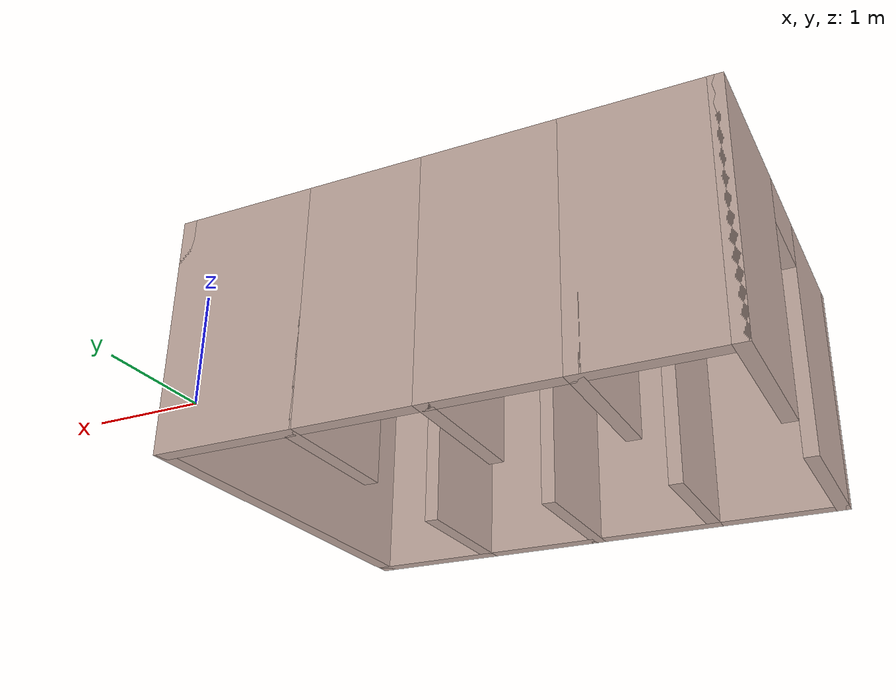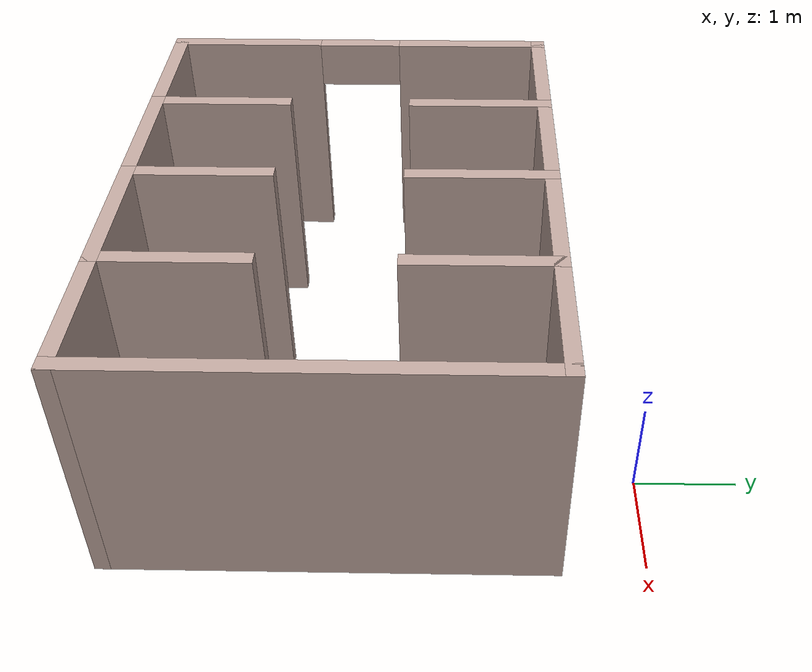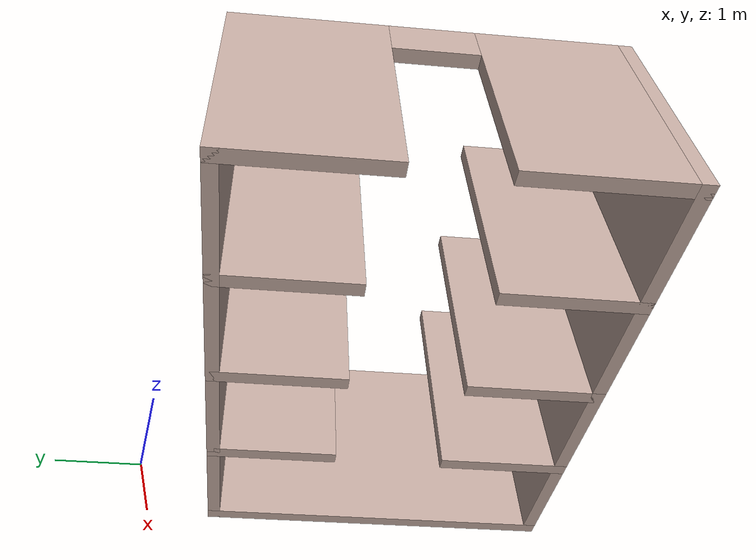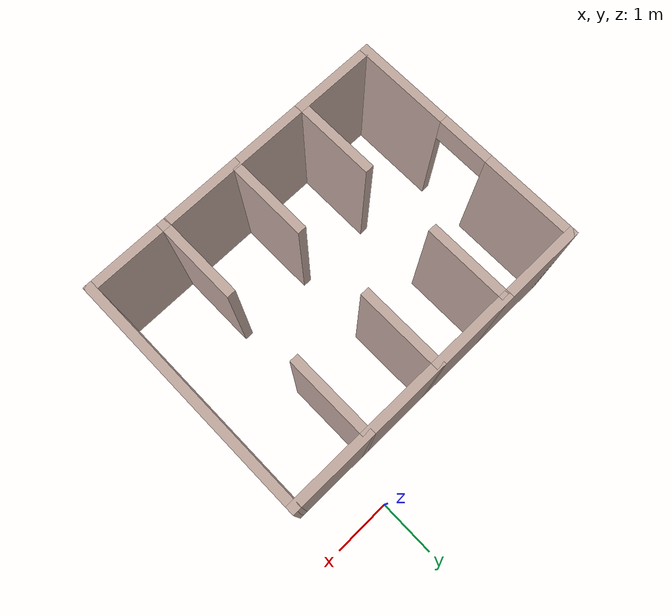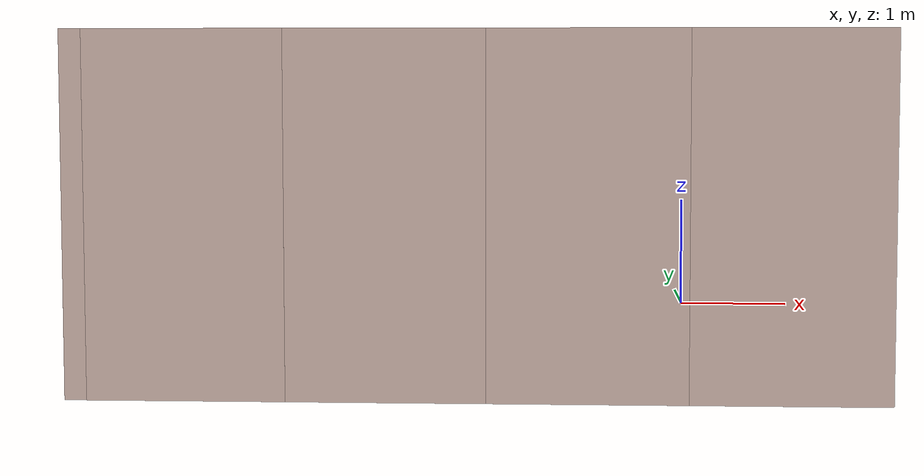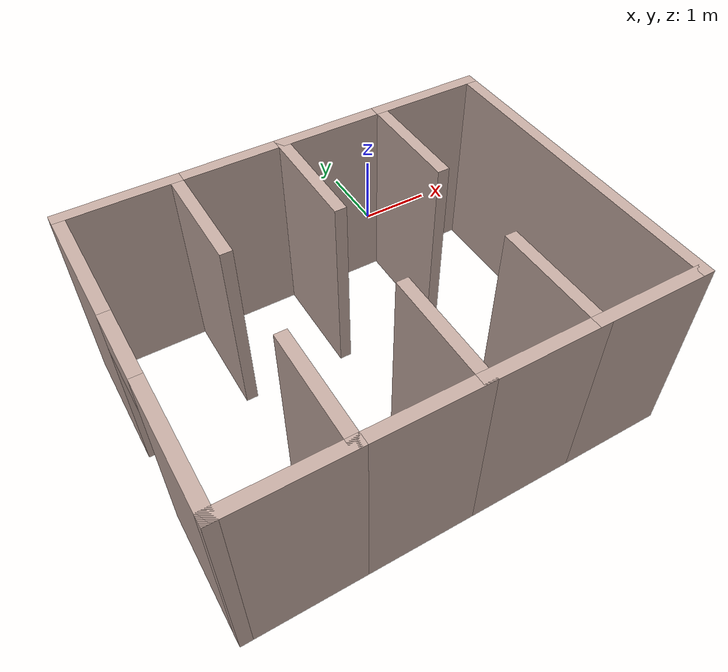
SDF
<?xml version='1.0'?>
<sdf version='1.6'>
  <model name='parking'>
    <pose frame=''>-1.68 -2.9 0 0 -0 0</pose>
    <link name='Wall_10'>
      <collision name='Wall_10_Collision'>
        <geometry>
          <box>
            <size>1.5 0.15 2.5</size>
          </box>
        </geometry>
        <pose frame=''>0 0 1.25 0 -0 0</pose>
      </collision>
      <visual name='Wall_10_Visual'>
        <pose frame=''>0 0 1.25 0 -0 0</pose>
        <geometry>
          <box>
            <size>1.5 0.15 2.5</size>
          </box>
        </geometry>
        <material>
          <script>
            <uri>file://media/materials/scripts/gazebo.material</uri>
            <name>Gazebo/Grey</name>
          </script>
          <ambient>0.760784 0.662745 0.627451 1</ambient>
        </material>
        <meta>
          <layer>0</layer>
        </meta>
      </visual>
      <pose frame=''>-1.35 1.375 0 0 -0 -1.5708</pose>
    </link>
    <link name='Wall_12'>
      <collision name='Wall_12_Collision'>
        <geometry>
          <box>
            <size>1.5 0.15 2.5</size>
          </box>
        </geometry>
        <pose frame=''>0 0 1.25 0 -0 0</pose>
      </collision>
      <visual name='Wall_12_Visual'>
        <pose frame=''>0 0 1.25 0 -0 0</pose>
        <geometry>
          <box>
            <size>1.5 0.15 2.5</size>
          </box>
        </geometry>
        <material>
          <script>
            <uri>file://media/materials/scripts/gazebo.material</uri>
            <name>Gazebo/Grey</name>
          </script>
          <ambient>0.760784 0.662745 0.627451 1</ambient>
        </material>
        <meta>
          <layer>0</layer>
        </meta>
      </visual>
      <pose frame=''>-0.675 2.05 0 0 -0 0</pose>
    </link>
    <link name='Wall_13'>
      <collision name='Wall_13_Collision'>
        <geometry>
          <box>
            <size>1.5 0.15 2.5</size>
          </box>
        </geometry>
        <pose frame=''>0 0 1.25 0 -0 0</pose>
      </collision>
      <visual name='Wall_13_Visual'>
        <pose frame=''>0 0 1.25 0 -0 0</pose>
        <geometry>
          <box>
            <size>1.5 0.15 2.5</size>
          </box>
        </geometry>
        <material>
          <script>
            <uri>file://media/materials/scripts/gazebo.material</uri>
            <name>Gazebo/Grey</name>
          </script>
          <ambient>0.760784 0.662745 0.627451 1</ambient>
        </material>
        <meta>
          <layer>0</layer>
        </meta>
      </visual>
      <pose frame=''>0 1.375 0 0 -0 -1.5708</pose>
    </link>
    <link name='Wall_15'>
      <collision name='Wall_15_Collision'>
        <geometry>
          <box>
            <size>1.5 0.15 2.5</size>
          </box>
        </geometry>
        <pose frame=''>0 0 1.25 0 -0 0</pose>
      </collision>
      <visual name='Wall_15_Visual'>
        <pose frame=''>0 0 1.25 0 -0 0</pose>
        <geometry>
          <box>
            <size>1.5 0.15 2.5</size>
          </box>
        </geometry>
        <material>
          <script>
            <uri>file://media/materials/scripts/gazebo.material</uri>
            <name>Gazebo/Grey</name>
          </script>
          <ambient>0.760784 0.662745 0.627451 1</ambient>
        </material>
        <meta>
          <layer>0</layer>
        </meta>
      </visual>
      <pose frame=''>0.675 2.05 0 0 -0 0</pose>
    </link>
    <link name='Wall_16'>
      <collision name='Wall_16_Collision'>
        <geometry>
          <box>
            <size>1.5 0.15 2.5</size>
          </box>
        </geometry>
        <pose frame=''>0 0 1.25 0 -0 0</pose>
      </collision>
      <visual name='Wall_16_Visual'>
        <pose frame=''>0 0 1.25 0 -0 0</pose>
        <geometry>
          <box>
            <size>1.5 0.15 2.5</size>
          </box>
        </geometry>
        <material>
          <script>
            <uri>file://media/materials/scripts/gazebo.material</uri>
            <name>Gazebo/Grey</name>
          </script>
          <ambient>0.760784 0.662745 0.627451 1</ambient>
        </material>
        <meta>
          <layer>0</layer>
        </meta>
      </visual>
      <pose frame=''>1.35 1.375 0 0 -0 -1.5708</pose>
    </link>
    <link name='Wall_18'>
      <collision name='Wall_18_Collision'>
        <geometry>
          <box>
            <size>1.5 0.15 2.5</size>
          </box>
        </geometry>
        <pose frame=''>0 0 1.25 0 -0 0</pose>
      </collision>
      <visual name='Wall_18_Visual'>
        <pose frame=''>0 0 1.25 0 -0 0</pose>
        <geometry>
          <box>
            <size>1.5 0.15 2.5</size>
          </box>
        </geometry>
        <material>
          <script>
            <uri>file://media/materials/scripts/gazebo.material</uri>
            <name>Gazebo/Grey</name>
          </script>
          <ambient>0.760784 0.662745 0.627451 1</ambient>
        </material>
        <meta>
          <layer>0</layer>
        </meta>
      </visual>
      <pose frame=''>2.025 2.05 0 0 -0 0</pose>
    </link>
    <link name='Wall_19'>
      <collision name='Wall_19_Collision'>
        <geometry>
          <box>
            <size>4.25 0.15 2.5</size>
          </box>
        </geometry>
        <pose frame=''>0 0 1.25 0 -0 0</pose>
      </collision>
      <visual name='Wall_19_Visual'>
        <pose frame=''>0 0 1.25 0 -0 0</pose>
        <geometry>
          <box>
            <size>4.25 0.15 2.5</size>
          </box>
        </geometry>
        <material>
          <script>
            <uri>file://media/materials/scripts/gazebo.material</uri>
            <name>Gazebo/Grey</name>
          </script>
          <ambient>0.760784 0.662745 0.627451 1</ambient>
        </material>
        <meta>
          <layer>0</layer>
        </meta>
      </visual>
      <pose frame=''>2.7 0 0 0 -0 -1.5708</pose>
    </link>
    <link name='Wall_2'>
      <pose frame=''>-2.7 0 0 0 -0 1.5708</pose>
      <visual name='Wall_2_Visual_0'>
        <pose frame=''>-1.2825 0 1.25 0 -0 0</pose>
        <geometry>
          <box>
            <size>1.685 0.15 2.5</size>
          </box>
        </geometry>
        <material>
          <script>
            <uri>file://media/materials/scripts/gazebo.material</uri>
            <name>Gazebo/Grey</name>
          </script>
          <ambient>0.760784 0.662745 0.627451 1</ambient>
        </material>
        <meta>
          <layer>0</layer>
        </meta>
      </visual>
      <collision name='Wall_2_Collision_0'>
        <geometry>
          <box>
            <size>1.685 0.15 2.5</size>
          </box>
        </geometry>
        <pose frame=''>-1.2825 0 1.25 0 -0 0</pose>
      </collision>
      <visual name='Wall_2_Visual_1'>
        <pose frame=''>1.2925 0 1.25 0 -0 0</pose>
        <geometry>
          <box>
            <size>1.665 0.15 2.5</size>
          </box>
        </geometry>
        <material>
          <script>
            <uri>file://media/materials/scripts/gazebo.material</uri>
            <name>Gazebo/Grey</name>
          </script>
          <ambient>0.760784 0.662745 0.627451 1</ambient>
        </material>
        <meta>
          <layer>0</layer>
        </meta>
      </visual>
      <collision name='Wall_2_Collision_1'>
        <geometry>
          <box>
            <size>1.665 0.15 2.5</size>
          </box>
        </geometry>
        <pose frame=''>1.2925 0 1.25 0 -0 0</pose>
      </collision>
      <visual name='Wall_2_Visual_2'>
        <pose frame=''>0.01 0 2.25 0 -0 0</pose>
        <geometry>
          <box>
            <size>0.9 0.15 0.5</size>
          </box>
        </geometry>
        <material>
          <script>
            <uri>file://media/materials/scripts/gazebo.material</uri>
            <name>Gazebo/Grey</name>
          </script>
          <ambient>0.760784 0.662745 0.627451 1</ambient>
        </material>
        <meta>
          <layer>0</layer>
        </meta>
      </visual>
      <collision name='Wall_2_Collision_2'>
        <geometry>
          <box>
            <size>0.9 0.15 0.5</size>
          </box>
        </geometry>
        <pose frame=''>0.01 0 2.25 0 -0 0</pose>
      </collision>
    </link>
    <link name='Wall_21'>
      <collision name='Wall_21_Collision'>
        <geometry>
          <box>
            <size>1.5 0.15 2.5</size>
          </box>
        </geometry>
        <pose frame=''>0 0 1.25 0 -0 0</pose>
      </collision>
      <visual name='Wall_21_Visual'>
        <pose frame=''>0 0 1.25 0 -0 0</pose>
        <geometry>
          <box>
            <size>1.5 0.15 2.5</size>
          </box>
        </geometry>
        <material>
          <script>
            <uri>file://media/materials/scripts/gazebo.material</uri>
            <name>Gazebo/Grey</name>
          </script>
          <ambient>0.760784 0.662745 0.627451 1</ambient>
        </material>
        <meta>
          <layer>0</layer>
        </meta>
      </visual>
      <pose frame=''>2.025 -2.05 0 0 -0 3.14159</pose>
    </link>
    <link name='Wall_22'>
      <collision name='Wall_22_Collision'>
        <geometry>
          <box>
            <size>1.5 0.15 2.5</size>
          </box>
        </geometry>
        <pose frame=''>0 0 1.25 0 -0 0</pose>
      </collision>
      <visual name='Wall_22_Visual'>
        <pose frame=''>0 0 1.25 0 -0 0</pose>
        <geometry>
          <box>
            <size>1.5 0.15 2.5</size>
          </box>
        </geometry>
        <material>
          <script>
            <uri>file://media/materials/scripts/gazebo.material</uri>
            <name>Gazebo/Grey</name>
          </script>
          <ambient>0.760784 0.662745 0.627451 1</ambient>
        </material>
        <meta>
          <layer>0</layer>
        </meta>
      </visual>
      <pose frame=''>1.35 -1.375 0 0 -0 1.5708</pose>
    </link>
    <link name='Wall_24'>
      <collision name='Wall_24_Collision'>
        <geometry>
          <box>
            <size>1.5 0.15 2.5</size>
          </box>
        </geometry>
        <pose frame=''>0 0 1.25 0 -0 0</pose>
      </collision>
      <visual name='Wall_24_Visual'>
        <pose frame=''>0 0 1.25 0 -0 0</pose>
        <geometry>
          <box>
            <size>1.5 0.15 2.5</size>
          </box>
        </geometry>
        <material>
          <script>
            <uri>file://media/materials/scripts/gazebo.material</uri>
            <name>Gazebo/Grey</name>
          </script>
          <ambient>0.760784 0.662745 0.627451 1</ambient>
        </material>
        <meta>
          <layer>0</layer>
        </meta>
      </visual>
      <pose frame=''>0.675 -2.05 0 0 -0 3.14159</pose>
    </link>
    <link name='Wall_25'>
      <collision name='Wall_25_Collision'>
        <geometry>
          <box>
            <size>1.5 0.15 2.5</size>
          </box>
        </geometry>
        <pose frame=''>0 0 1.25 0 -0 0</pose>
      </collision>
      <visual name='Wall_25_Visual'>
        <pose frame=''>0 0 1.25 0 -0 0</pose>
        <geometry>
          <box>
            <size>1.5 0.15 2.5</size>
          </box>
        </geometry>
        <material>
          <script>
            <uri>file://media/materials/scripts/gazebo.material</uri>
            <name>Gazebo/Grey</name>
          </script>
          <ambient>0.760784 0.662745 0.627451 1</ambient>
        </material>
        <meta>
          <layer>0</layer>
        </meta>
      </visual>
      <pose frame=''>0 -1.375 0 0 -0 1.5708</pose>
    </link>
    <link name='Wall_27'>
      <collision name='Wall_27_Collision'>
        <geometry>
          <box>
            <size>1.5 0.15 2.5</size>
          </box>
        </geometry>
        <pose frame=''>0 0 1.25 0 -0 0</pose>
      </collision>
      <visual name='Wall_27_Visual'>
        <pose frame=''>0 0 1.25 0 -0 0</pose>
        <geometry>
          <box>
            <size>1.5 0.15 2.5</size>
          </box>
        </geometry>
        <material>
          <script>
            <uri>file://media/materials/scripts/gazebo.material</uri>
            <name>Gazebo/Grey</name>
          </script>
          <ambient>0.760784 0.662745 0.627451 1</ambient>
        </material>
        <meta>
          <layer>0</layer>
        </meta>
      </visual>
      <pose frame=''>-0.675 -2.05 0 0 -0 3.14159</pose>
    </link>
    <link name='Wall_28'>
      <collision name='Wall_28_Collision'>
        <geometry>
          <box>
            <size>1.5 0.15 2.5</size>
          </box>
        </geometry>
        <pose frame=''>0 0 1.25 0 -0 0</pose>
      </collision>
      <visual name='Wall_28_Visual'>
        <pose frame=''>0 0 1.25 0 -0 0</pose>
        <geometry>
          <box>
            <size>1.5 0.15 2.5</size>
          </box>
        </geometry>
        <material>
          <script>
            <uri>file://media/materials/scripts/gazebo.material</uri>
            <name>Gazebo/Grey</name>
          </script>
          <ambient>0.760784 0.662745 0.627451 1</ambient>
        </material>
        <meta>
          <layer>0</layer>
        </meta>
      </visual>
      <pose frame=''>-1.35 -1.375 0 0 -0 1.5708</pose>
    </link>
    <link name='Wall_30'>
      <collision name='Wall_30_Collision'>
        <geometry>
          <box>
            <size>1.5 0.15 2.5</size>
          </box>
        </geometry>
        <pose frame=''>0 0 1.25 0 -0 0</pose>
      </collision>
      <visual name='Wall_30_Visual'>
        <pose frame=''>0 0 1.25 0 -0 0</pose>
        <geometry>
          <box>
            <size>1.5 0.15 2.5</size>
          </box>
        </geometry>
        <material>
          <script>
            <uri>file://media/materials/scripts/gazebo.material</uri>
            <name>Gazebo/Grey</name>
          </script>
          <ambient>0.760784 0.662745 0.627451 1</ambient>
        </material>
        <meta>
          <layer>0</layer>
        </meta>
      </visual>
      <pose frame=''>-2.025 -2.05 0 0 -0 3.14159</pose>
    </link>
    <link name='Wall_9'>
      <collision name='Wall_9_Collision'>
        <geometry>
          <box>
            <size>1.5 0.15 2.5</size>
          </box>
        </geometry>
        <pose frame=''>0 0 1.25 0 -0 0</pose>
      </collision>
      <visual name='Wall_9_Visual'>
        <pose frame=''>0 0 1.25 0 -0 0</pose>
        <geometry>
          <box>
            <size>1.5 0.15 2.5</size>
          </box>
        </geometry>
        <material>
          <script>
            <uri>file://media/materials/scripts/gazebo.material</uri>
            <name>Gazebo/Grey</name>
          </script>
          <ambient>0.760784 0.662745 0.627451 1</ambient>
        </material>
        <meta>
          <layer>0</layer>
        </meta>
      </visual>
      <pose frame=''>-2.025 2.05 0 0 -0 0</pose>
    </link>
    <static>1</static>
  </model>
</sdf>
